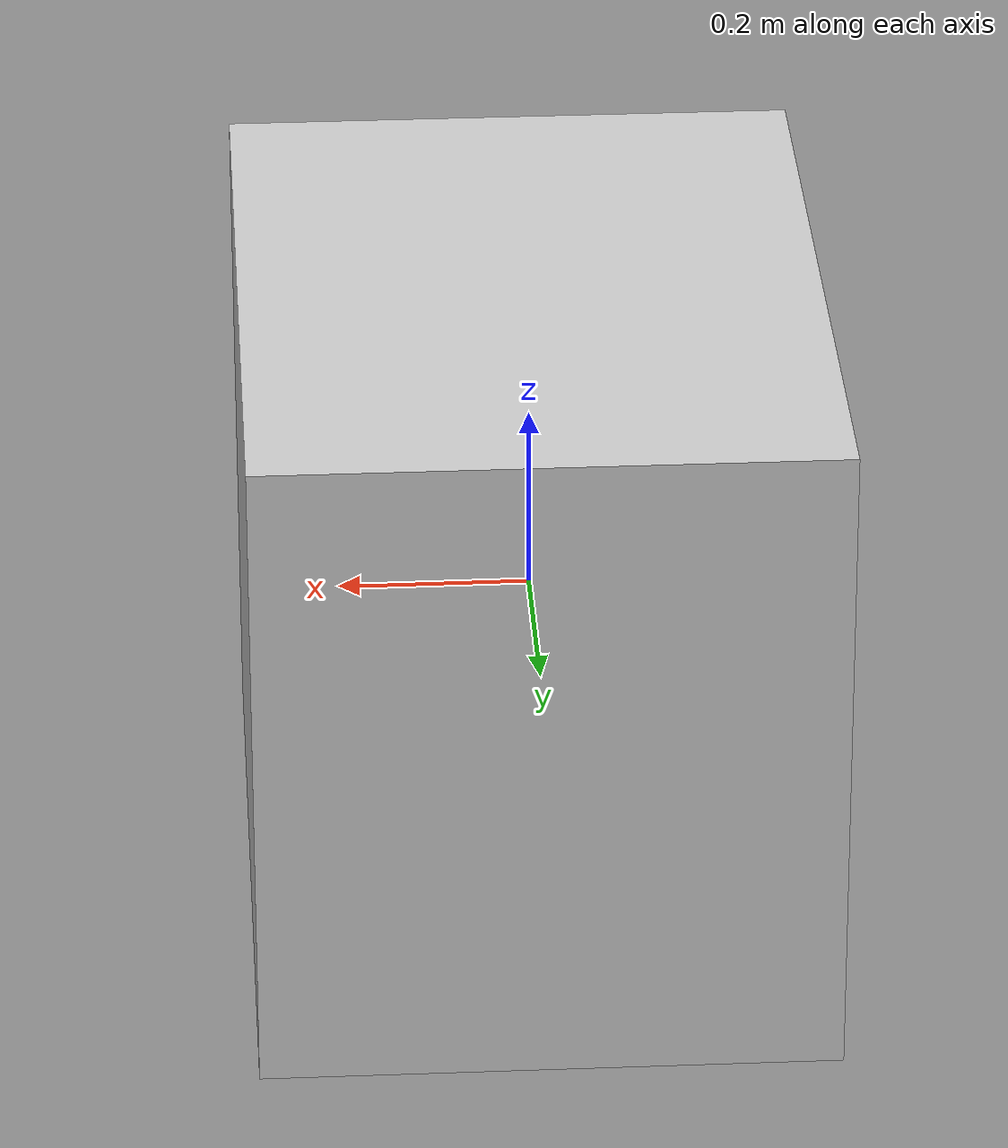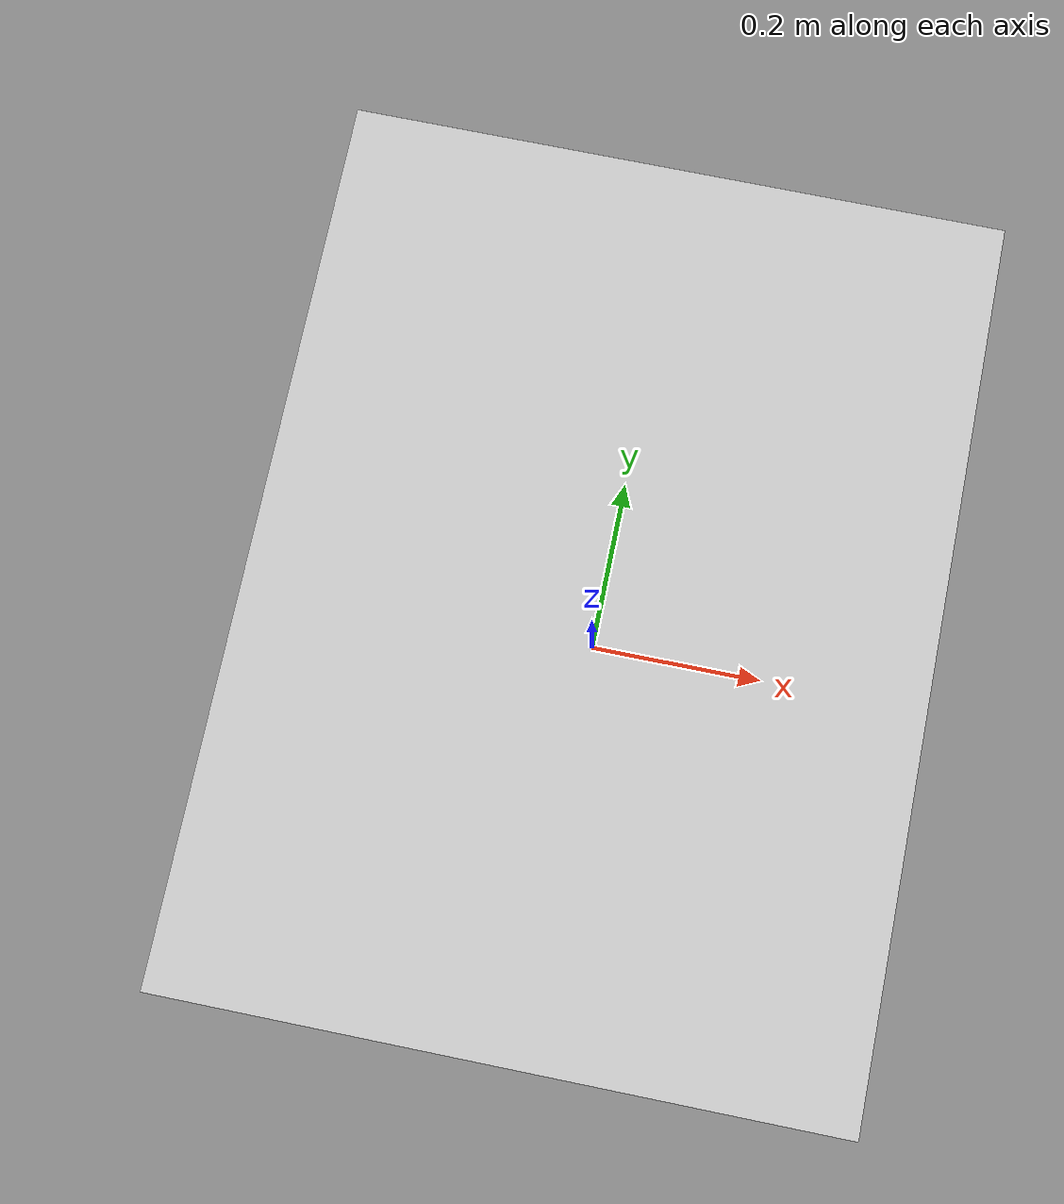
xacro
<?xml version="1.0"?>

<robot xmlns:xacro="http://www.ros.org/wiki/xacro" name = "mobilebase">

    <xacro:macro name="default_inertial" params="mass">
        <inertial>
            <mass value="${mass}" />
            <inertia ixx="1e-6" ixy="0.0" ixz="0.0"
                    iyy="1e-6" iyz="0.0"
                    izz="1e-6" />
            </inertial>
	</xacro:macro>

    <link name = "mobile_base">
        <visual>
            <geometry>
                <box size = "0.6 0.8 0.7"/>
            </geometry>
            <material name = "gray">
                <color rgba = "0.8 0.8 0.8 1"/>
            </material>
        </visual>
        <collision>
            <geometry>
                <box size = "0.6 0.8 0.7"/>
            </geometry>
        </collision>
		<xacro:default_inertial mass="50"/>
    </link>

</robot>
